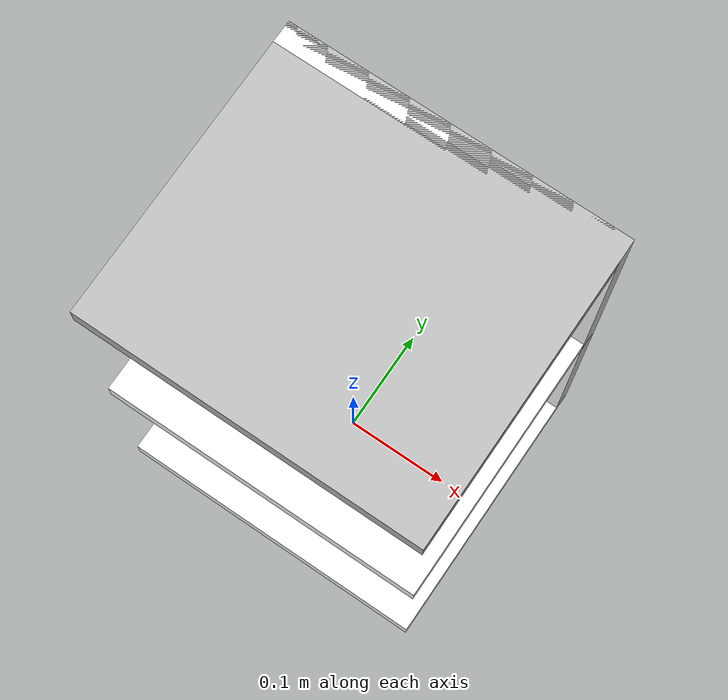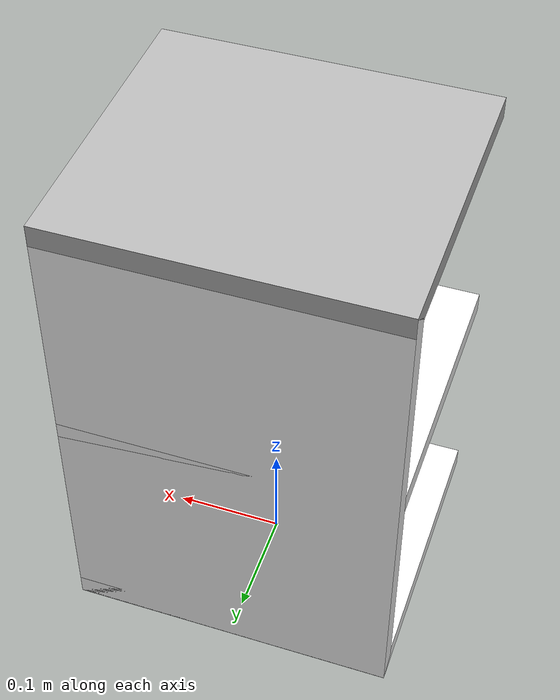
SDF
<?xml version="1.0" ?>
<sdf version="1.7">
  <model name="bookshelf">
    <static>true</static>
    <link name="link">

      <visual name="base_visual">
        <pose>0 0 0.01 0 0 0</pose> <geometry>
          <box>
            <size>0.3 0.27 0.02</size>
          </box>
        </geometry>
        <material>
          <ambient>1 1 1 1</ambient>
          <diffuse>1 1 1 1</diffuse>
        </material>
      </visual>
      <collision name="base_collision">
        <pose>0 0 0.01 0 0 0</pose>
        <geometry>
          <box>
            <size>0.3 0.27 0.02</size>
          </box>
        </geometry>
      </collision>

      <visual name="middle_visual">
        <pose>0 0 0.23 0 0 0</pose>
        <geometry>
          <box>
            <size>0.3 0.27 0.02</size>
          </box>
        </geometry>
        <material>
          <ambient>1 1 1 1</ambient>
          <diffuse>1 1 1 1</diffuse>
        </material>
      </visual>
      <collision name="middle_collision">
        <pose>0 0 0.23 0 0 0</pose>
        <geometry>
          <box>
            <size>0.3 0.27 0.02</size>
          </box>
        </geometry>
      </collision>

<visual name="top_visual">
        <pose>0 0 0.45 0 0 0</pose>
        <geometry>
          <box>
            <size>0.3 0.27 0.02</size>
          </box>
        </geometry>
        <material>
          <script>
            <uri>model://bookshelf/materials/scripts</uri>
            <uri>model://bookshelf/materials/textures</uri>
            <name>Bookshelf/Label</name>
          </script>
        </material>
      </visual>
      <collision name="top_collision">
        <pose>0 0 0.45 0 0 0</pose>
        <geometry>
          <box>
            <size>0.3 0.27 0.02</size>
          </box>
        </geometry>
      </collision>

      <visual name="back_visual">
        <pose>0 0.125 0.23 0 0 0</pose>
        <geometry>
          <box>
            <size>0.3 0.02 0.46</size>
          </box>
        </geometry>
        <material>
          <ambient>1 1 1 1</ambient>
          <diffuse>1 1 1 1</diffuse>
        </material>
      </visual>
      <collision name="back_collision">
        <pose>0 0.125 0.23 0 0 0</pose>
        <geometry>
          <box>
            <size>0.3 0.02 0.46</size>
          </box>
        </geometry>
      </collision>

    </link>
  </model>
</sdf>
